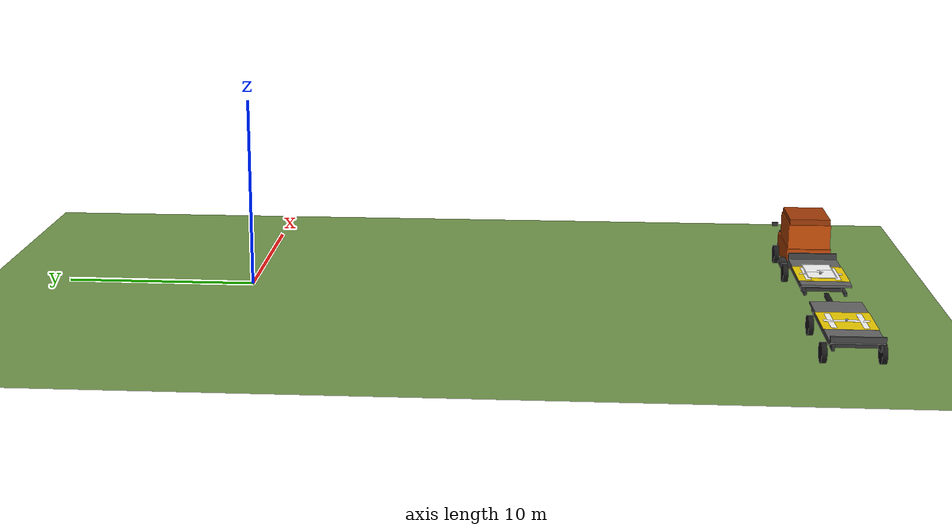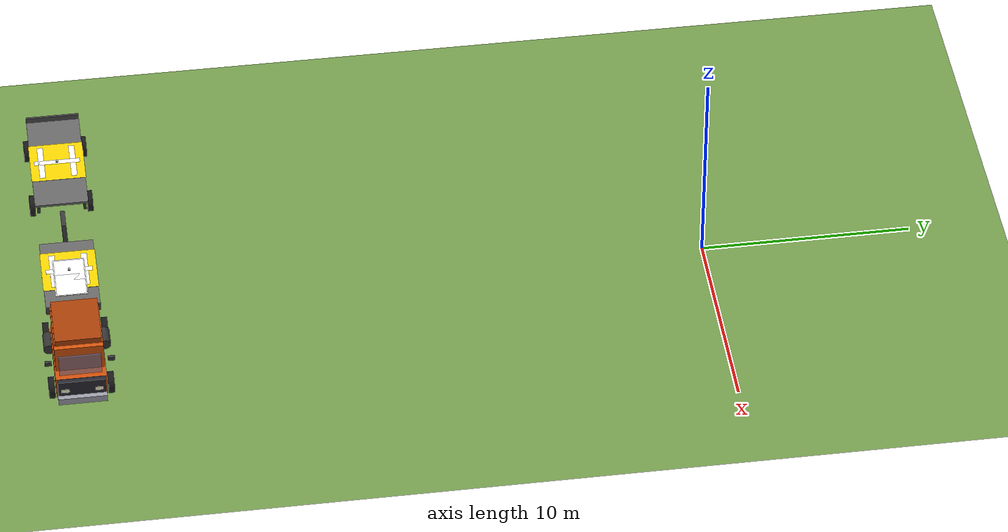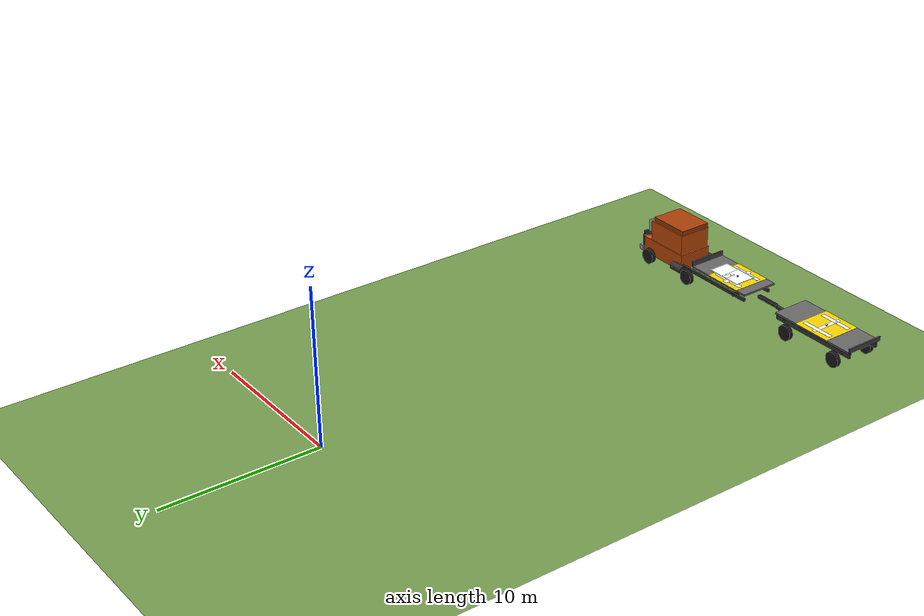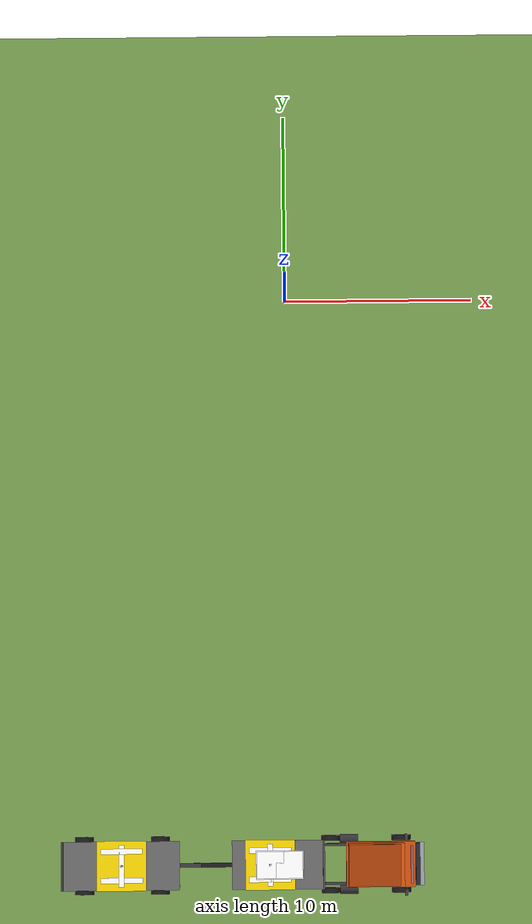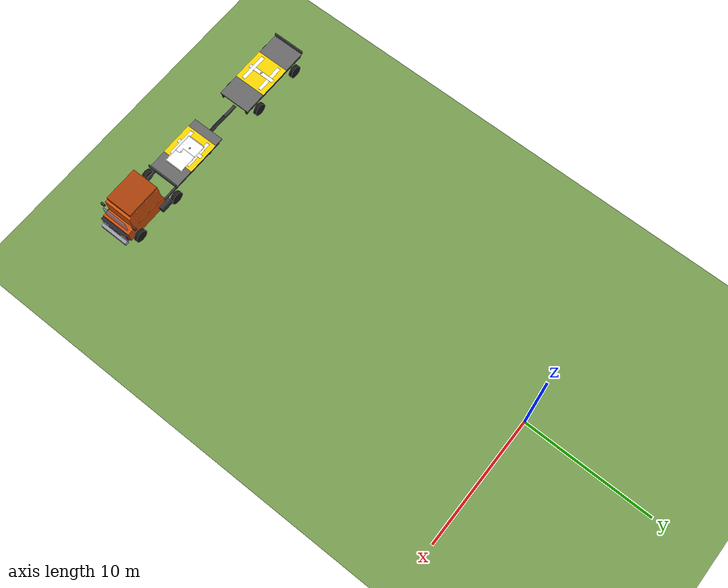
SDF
<sdf version="1.9">
 <world name="iris_apriltag_precision_land">
  <physics name="1ms" type="ignore">
   <max_step_size>0.001</max_step_size>
   <real_time_factor>1.0</real_time_factor>
  </physics>
  <plugin filename="gz-sim-physics-system" name="gz::sim::systems::Physics"/>
  <plugin filename="gz-sim-sensors-system" name="gz::sim::systems::Sensors">
   <render_engine>ogre2</render_engine>
  </plugin>
  <plugin filename="gz-sim-user-commands-system" name="gz::sim::systems::UserCommands"/>
  <plugin filename="gz-sim-scene-broadcaster-system" name="gz::sim::systems::SceneBroadcaster"/>
  <plugin filename="gz-sim-imu-system" name="gz::sim::systems::Imu"/>
  <plugin filename="gz-sim-navsat-system" name="gz::sim::systems::NavSat"/>
  <plugin filename="gz-sim-particle-emitter-system" name="gz::sim::systems::ParticleEmitter"/>
  <scene><ambient>1.0 1.0 1.0</ambient><background>0.6 0.8 1.0</background></scene>
  <light type="directional" name="sun">
   <pose>0 0 10 0 0 0</pose>
   <diffuse>0.8 0.8 0.8 1</diffuse>
   <specular>0.8 0.8 0.8 1</specular>
   <attenuation>
    <range>1000</range>
    <constant>0.9</constant>
    <linear>0.01</linear>
    <quadratic>0.001</quadratic>
   </attenuation>
   <direction>-0.5 0.1 -0.9</direction>
  </light>
  <spherical_coordinates>
   <latitude_deg>-35.363333333</latitude_deg>
   <longitude_deg>149.165222222</longitude_deg>
   <elevation>584</elevation>
   <heading_deg>0</heading_deg>
   <surface_model>EARTH_WGS84</surface_model>
  </spherical_coordinates>
  <model name="ground_plane">
   <static>true</static>
   <link name="link">
    <collision name="collision">
     <geometry><plane><normal>0 0 1</normal><size>500 500</size></plane></geometry>
    </collision>
    <visual name="visual">
     <geometry><plane><normal>0 0 1</normal><size>500 500</size></plane></geometry>
     <material>
      <ambient>0.45 0.60 0.30 1</ambient>
      <diffuse>0.45 0.60 0.30 1</diffuse>
      <specular>0.1 0.1 0.1 1</specular>
     </material>
    </visual>
   </link>
  </model>
  <model name="axes">
   <static>true</static>
   <link name="link">
    <visual name="x_axis">
     <cast_shadows>false</cast_shadows>
     <pose>2.5 0 0.05 0 0 0</pose>
     <geometry><box><size>5 0.05 0.05</size></box></geometry>
     <material><ambient>1 0 0 1</ambient><diffuse>1 0 0 1</diffuse></material>
    </visual>
    <visual name="y_axis">
     <cast_shadows>false</cast_shadows>
     <pose>0 2.5 0.05 0 0 0</pose>
     <geometry><box><size>0.05 5 0.05</size></box></geometry>
     <material><ambient>0 1 0 1</ambient><diffuse>0 1 0 1</diffuse></material>
    </visual>
    <visual name="z_axis">
     <cast_shadows>false</cast_shadows>
     <pose>0 0 2.5 0 0 0</pose>
     <geometry><box><size>0.05 0.05 5</size></box></geometry>
     <material><ambient>0 0 1 1</ambient><diffuse>0 0 1 1</diffuse></material>
    </visual>
   </link>
  </model>
  <include><uri>model://landing_truck</uri><name>landing_truck</name><pose>0 -30 0 0 0 0</pose></include>
 </world>
</sdf>

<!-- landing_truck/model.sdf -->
<sdf version="1.9">
  <model name="landing_truck">
    <static>false</static>
    <self_collide>false</self_collide>

    <link name="base_link">
      <inertial>
        <mass>5200.0</mass>
        <inertia>
          <ixx>7800.0</ixx>
          <ixy>0.0</ixy>
          <ixz>0.0</ixz>
          <iyy>43000.0</iyy>
          <iyz>0.0</iyz>
          <izz>41000.0</izz>
        </inertia>
      </inertial>
      <velocity_decay>
        <linear>0.03</linear>
        <angular>0.10</angular>
      </velocity_decay>

      <!-- Chassis rails -->
      <visual name="frame_rail_left">
        <pose>1.2 1.02 0.86 0 0 0</pose>
        <geometry><box><size>8.0 0.14 0.18</size></box></geometry>
        <material>
          <ambient>0.22 0.22 0.22 1</ambient>
          <diffuse>0.22 0.22 0.22 1</diffuse>
          <specular>0.05 0.05 0.05 1</specular>
        </material>
      </visual>
      <collision name="frame_rail_left_col">
        <pose>1.2 1.02 0.86 0 0 0</pose>
        <geometry><box><size>8.0 0.14 0.18</size></box></geometry>
      </collision>

      <visual name="frame_rail_right">
        <pose>1.2 -1.02 0.86 0 0 0</pose>
        <geometry><box><size>8.0 0.14 0.18</size></box></geometry>
        <material>
          <ambient>0.22 0.22 0.22 1</ambient>
          <diffuse>0.22 0.22 0.22 1</diffuse>
          <specular>0.05 0.05 0.05 1</specular>
        </material>
      </visual>
      <collision name="frame_rail_right_col">
        <pose>1.2 -1.02 0.86 0 0 0</pose>
        <geometry><box><size>8.0 0.14 0.18</size></box></geometry>
      </collision>

      <visual name="cross_member_rear">
        <pose>-1.8 0 0.82 0 0 0</pose>
        <geometry><box><size>0.18 2.2 0.18</size></box></geometry>
        <material>
          <ambient>0.22 0.22 0.22 1</ambient>
          <diffuse>0.22 0.22 0.22 1</diffuse>
        </material>
      </visual>
      <collision name="cross_member_rear_col">
        <pose>-1.8 0 0.82 0 0 0</pose>
        <geometry><box><size>0.18 2.2 0.18</size></box></geometry>
      </collision>

      <visual name="cross_member_front">
        <pose>3.2 0 0.82 0 0 0</pose>
        <geometry><box><size>0.18 2.2 0.18</size></box></geometry>
        <material>
          <ambient>0.22 0.22 0.22 1</ambient>
          <diffuse>0.22 0.22 0.22 1</diffuse>
        </material>
      </visual>
      <collision name="cross_member_front_col">
        <pose>3.2 0 0.82 0 0 0</pose>
        <geometry><box><size>0.18 2.2 0.18</size></box></geometry>
      </collision>

      <!-- Rear truck bed for drone 1 -->
      <visual name="truck_bed">
        <pose>-0.6 0 1.34 0 0 0</pose>
        <geometry><box><size>4.8 2.55 0.12</size></box></geometry>
        <material>
          <ambient>0.42 0.42 0.42 1</ambient>
          <diffuse>0.40 0.40 0.40 1</diffuse>
          <specular>0.08 0.08 0.08 1</specular>
        </material>
      </visual>
      <collision name="truck_bed_col">
        <pose>-0.6 0 1.34 0 0 0</pose>
        <geometry><box><size>4.8 2.55 0.12</size></box></geometry>
      </collision>

      <visual name="bed_headboard">
        <pose>1.82 0 1.56 0 0 0</pose>
        <geometry><box><size>0.10 2.55 0.32</size></box></geometry>
        <material>
          <ambient>0.30 0.30 0.30 1</ambient>
          <diffuse>0.28 0.28 0.28 1</diffuse>
        </material>
      </visual>
      <collision name="bed_headboard_col">
        <pose>1.82 0 1.56 0 0 0</pose>
        <geometry><box><size>0.10 2.55 0.32</size></box></geometry>
      </collision>

      <!-- Drone 1 landing pad -->
      <visual name="landing_pad_bg">
        <pose>-1.0 0 1.406 0 0 0</pose>
        <geometry><box><size>2.6 2.6 0.008</size></box></geometry>
        <material>
          <ambient>0.95 0.82 0.0 1</ambient>
          <diffuse>0.95 0.82 0.0 1</diffuse>
          <specular>0.15 0.12 0.0 1</specular>
        </material>
      </visual>
      <visual name="landing_pad_h_bar">
        <pose>-1.0 0 1.411 0 0 0</pose>
        <geometry><box><size>0.28 2.2 0.002</size></box></geometry>
        <material>
          <ambient>1.0 1.0 1.0 1</ambient>
          <diffuse>1.0 1.0 1.0 1</diffuse>
        </material>
      </visual>
      <visual name="landing_pad_h_left">
        <pose>-1.0 0.76 1.411 0 0 0</pose>
        <geometry><box><size>2.2 0.28 0.002</size></box></geometry>
        <material>
          <ambient>1.0 1.0 1.0 1</ambient>
          <diffuse>1.0 1.0 1.0 1</diffuse>
        </material>
      </visual>
      <visual name="landing_pad_h_right">
        <pose>-1.0 -0.76 1.411 0 0 0</pose>
        <geometry><box><size>2.2 0.28 0.002</size></box></geometry>
        <material>
          <ambient>1.0 1.0 1.0 1</ambient>
          <diffuse>1.0 1.0 1.0 1</diffuse>
        </material>
      </visual>

      <!-- Truck GPS -->
      <visual name="gps_mount_base">
        <pose>-1.0 0 1.430 0 0 0</pose>
        <geometry><box><size>0.10 0.10 0.04</size></box></geometry>
        <material>
          <ambient>0.30 0.30 0.30 1</ambient>
          <diffuse>0.28 0.28 0.28 1</diffuse>
        </material>
      </visual>
      <visual name="gps_head">
        <pose>-1.0 0 1.474 0 0 0</pose>
        <geometry><cylinder><radius>0.065</radius><length>0.048</length></cylinder></geometry>
        <material>
          <ambient>0.90 0.90 0.90 1</ambient>
          <diffuse>0.88 0.88 0.88 1</diffuse>
          <specular>0.4 0.4 0.4 1</specular>
        </material>
      </visual>
      <visual name="gps_led">
        <pose>-1.0 0 1.502 0 0 0</pose>
        <geometry><cylinder><radius>0.018</radius><length>0.008</length></cylinder></geometry>
        <material>
          <ambient>0.0 0.9 0.2 1</ambient>
          <diffuse>0.0 0.9 0.2 1</diffuse>
        </material>
      </visual>

      <!-- Cab -->
      <visual name="cab_lower">
        <pose>4.8 0 1.05 0 0 0</pose>
        <geometry><box><size>3.6 2.35 1.1</size></box></geometry>
        <material>
          <ambient>0.82 0.32 0.05 1</ambient>
          <diffuse>0.80 0.30 0.04 1</diffuse>
          <specular>0.10 0.05 0.02 1</specular>
        </material>
      </visual>
      <collision name="cab_lower_col">
        <pose>4.8 0 1.05 0 0 0</pose>
        <geometry><box><size>3.6 2.35 1.1</size></box></geometry>
      </collision>

      <visual name="cab_upper">
        <pose>4.55 0 2.25 0 0 0</pose>
        <geometry><box><size>2.9 2.25 1.35</size></box></geometry>
        <material>
          <ambient>0.85 0.35 0.05 1</ambient>
          <diffuse>0.82 0.32 0.04 1</diffuse>
          <specular>0.10 0.05 0.02 1</specular>
        </material>
      </visual>
      <collision name="cab_upper_col">
        <pose>4.55 0 2.25 0 0 0</pose>
        <geometry><box><size>2.9 2.25 1.35</size></box></geometry>
      </collision>

      <visual name="cab_roof">
        <pose>4.45 0 3.10 0 0 0</pose>
        <geometry><box><size>2.7 2.15 0.30</size></box></geometry>
        <material>
          <ambient>0.68 0.26 0.04 1</ambient>
          <diffuse>0.65 0.24 0.03 1</diffuse>
        </material>
      </visual>
      <collision name="cab_roof_col">
        <pose>4.45 0 3.10 0 0 0</pose>
        <geometry><box><size>2.7 2.15 0.30</size></box></geometry>
      </collision>

      <visual name="windshield">
        <pose>6.40 0 2.25 0 0 0</pose>
        <geometry><box><size>0.08 1.95 1.10</size></box></geometry>
        <material>
          <ambient>0.38 0.55 0.85 0.55</ambient>
          <diffuse>0.38 0.55 0.85 0.50</diffuse>
          <specular>0.5 0.6 0.9 0.3</specular>
        </material>
      </visual>

      <visual name="front_grille">
        <pose>6.75 0 1.15 0 0 0</pose>
        <geometry><box><size>0.22 2.2 0.95</size></box></geometry>
        <material>
          <ambient>0.18 0.18 0.20 1</ambient>
          <diffuse>0.15 0.15 0.18 1</diffuse>
          <specular>0.5 0.5 0.6 1</specular>
        </material>
      </visual>
      <collision name="front_grille_col">
        <pose>6.75 0 1.15 0 0 0</pose>
        <geometry><box><size>0.22 2.2 0.95</size></box></geometry>
      </collision>

      <visual name="front_bumper">
        <pose>6.95 0 0.65 0 0 0</pose>
        <geometry><box><size>0.30 2.25 0.34</size></box></geometry>
        <material>
          <ambient>0.65 0.65 0.70 1</ambient>
          <diffuse>0.60 0.60 0.65 1</diffuse>
          <specular>0.6 0.6 0.65 1</specular>
        </material>
      </visual>
      <collision name="front_bumper_col">
        <pose>6.95 0 0.65 0 0 0</pose>
        <geometry><box><size>0.30 2.25 0.34</size></box></geometry>
      </collision>

      <visual name="headlight_left">
        <pose>6.82 0.78 1.10 0 0 0</pose>
        <geometry><box><size>0.10 0.38 0.20</size></box></geometry>
        <material>
          <ambient>0.98 0.98 0.85 1</ambient>
          <diffuse>0.95 0.95 0.80 1</diffuse>
        </material>
      </visual>
      <visual name="headlight_right">
        <pose>6.82 -0.78 1.10 0 0 0</pose>
        <geometry><box><size>0.10 0.38 0.20</size></box></geometry>
        <material>
          <ambient>0.98 0.98 0.85 1</ambient>
          <diffuse>0.95 0.95 0.80 1</diffuse>
        </material>
      </visual>

      <visual name="mirror_left">
        <pose>6.10 1.45 2.20 0 0 0</pose>
        <geometry><box><size>0.14 0.32 0.20</size></box></geometry>
        <material>
          <ambient>0.25 0.25 0.25 1</ambient>
          <diffuse>0.22 0.22 0.22 1</diffuse>
        </material>
      </visual>
      <visual name="mirror_right">
        <pose>6.10 -1.45 2.20 0 0 0</pose>
        <geometry><box><size>0.14 0.32 0.20</size></box></geometry>
        <material>
          <ambient>0.25 0.25 0.25 1</ambient>
          <diffuse>0.22 0.22 0.22 1</diffuse>
        </material>
      </visual>

      <visual name="fuel_tank_left">
        <pose>3.15 1.30 0.74 0 1.5708 0</pose>
        <geometry><cylinder><radius>0.26</radius><length>0.95</length></cylinder></geometry>
        <material>
          <ambient>0.22 0.22 0.22 1</ambient>
          <diffuse>0.20 0.20 0.20 1</diffuse>
        </material>
      </visual>
      <visual name="fuel_tank_right">
        <pose>3.15 -1.30 0.74 0 1.5708 0</pose>
        <geometry><cylinder><radius>0.26</radius><length>0.95</length></cylinder></geometry>
        <material>
          <ambient>0.22 0.22 0.22 1</ambient>
          <diffuse>0.20 0.20 0.20 1</diffuse>
        </material>
      </visual>

    </link>

    <link name="base_gps_link">
      <pose>-1.0 0 1.474 0 0 0</pose>
      <sensor name="gps_sensor" type="navsat">
        <pose>0 0 0 0 0 0</pose>
        <always_on>true</always_on>
        <update_rate>20.0</update_rate>
        <navsat>
          <position_sensing>
            <horizontal>
              <noise type="gaussian"><mean>0.0</mean><stddev>0.0</stddev></noise>
            </horizontal>
            <vertical>
              <noise type="gaussian"><mean>0.0</mean><stddev>0.0</stddev></noise>
            </vertical>
          </position_sensing>
          <velocity_sensing>
            <horizontal>
              <noise type="gaussian"><mean>0.0</mean><stddev>0.05</stddev></noise>
            </horizontal>
            <vertical>
              <noise type="gaussian"><mean>0.0</mean><stddev>0.05</stddev></noise>
            </vertical>
          </velocity_sensing>
        </navsat>
      </sensor>
    </link>

    <joint name="base_gps_fixed_joint" type="fixed">
      <parent>base_link</parent>
      <child>base_gps_link</child>
    </joint>

    <include>
      <uri>model://apriltag_36h11_1</uri>
      <name>truck_apriltag_36h11_1</name>
      <pose relative_to="base_link">-1.0 0 1.418 0 0 0</pose>
    </include>

    <joint name="truck_apriltag_fixed_joint" type="fixed">
      <parent>base_link</parent>
      <child>truck_apriltag_36h11_1::tag_link</child>
    </joint>

    <link name="truck_hitch_link">
      <pose>-3.0 0 0.90 0 0 0</pose>
      <inertial>
        <mass>12.0</mass>
        <inertia>
          <ixx>0.03</ixx>
          <ixy>0.0</ixy>
          <ixz>0.0</ixz>
          <iyy>0.03</iyy>
          <iyz>0.0</iyz>
          <izz>0.03</izz>
        </inertia>
      </inertial>
      <visual name="truck_hitch_ball">
        <geometry><sphere><radius>0.10</radius></sphere></geometry>
        <material>
          <ambient>0.60 0.60 0.64 1</ambient>
          <diffuse>0.55 0.55 0.60 1</diffuse>
          <specular>0.7 0.7 0.75 1</specular>
        </material>
      </visual>
      <collision name="truck_hitch_ball_col">
        <geometry><sphere><radius>0.08</radius></sphere></geometry>
      </collision>
    </link>
    <joint name="truck_hitch_fixed_joint" type="fixed">
      <parent>base_link</parent>
      <child>truck_hitch_link</child>
    </joint>

    <!-- Steering knuckles -->
    <link name="front_left_steering_link">
      <pose>5.9 1.37 0.50 0 0 0</pose>
      <inertial>
        <mass>20.0</mass>
        <inertia>
          <ixx>0.60</ixx>
          <iyy>0.60</iyy>
          <izz>0.40</izz>
        </inertia>
      </inertial>
      <visual name="kingpin_visual">
        <pose>0 0 0 0 0 0</pose>
        <geometry><cylinder><radius>0.06</radius><length>0.18</length></cylinder></geometry>
        <material>
          <ambient>0.8 0.8 0.8 1</ambient>
          <diffuse>0.8 0.8 0.8 1</diffuse>
        </material>
      </visual>
    </link>
    <link name="front_right_steering_link">
      <pose>5.9 -1.37 0.50 0 0 0</pose>
      <inertial>
        <mass>20.0</mass>
        <inertia>
          <ixx>0.60</ixx>
          <iyy>0.60</iyy>
          <izz>0.40</izz>
        </inertia>
      </inertial>
      <visual name="kingpin_visual">
        <pose>0 0 0 0 0 0</pose>
        <geometry><cylinder><radius>0.06</radius><length>0.18</length></cylinder></geometry>
        <material>
          <ambient>0.8 0.8 0.8 1</ambient>
          <diffuse>0.8 0.8 0.8 1</diffuse>
        </material>
      </visual>
    </link>

    <!-- Truck wheels -->
    <link name="front_left_wheel">
      <pose>5.9 1.37 0.50 -1.5708 0 0</pose>
      <inertial>
        <mass>85.0</mass>
        <inertia>
          <ixx>8.0</ixx>
          <iyy>8.0</iyy>
          <izz>10.0</izz>
        </inertia>
      </inertial>
      <visual name="visual">
        <geometry><cylinder><radius>0.50</radius><length>0.28</length></cylinder></geometry>
        <material>
          <ambient>0.12 0.12 0.12 1</ambient>
          <diffuse>0.10 0.10 0.10 1</diffuse>
        </material>
      </visual>
      <collision name="collision">
        <geometry><cylinder><radius>0.50</radius><length>0.28</length></cylinder></geometry>
        <surface>
          <friction>
            <ode>
              <mu>1.5</mu>
              <mu2>2.5</mu2>
              <fdir1>0 0 1</fdir1>
            </ode>
            <bullet>
              <friction>1.5</friction>
              <friction2>2.5</friction2>
              <rolling_friction>0.05</rolling_friction>
            </bullet>
          </friction>
        </surface>
      </collision>
    </link>
    <link name="front_right_wheel">
      <pose>5.9 -1.37 0.50 -1.5708 0 0</pose>
      <inertial>
        <mass>85.0</mass>
        <inertia>
          <ixx>8.0</ixx>
          <iyy>8.0</iyy>
          <izz>10.0</izz>
        </inertia>
      </inertial>
      <visual name="visual">
        <geometry><cylinder><radius>0.50</radius><length>0.28</length></cylinder></geometry>
        <material>
          <ambient>0.12 0.12 0.12 1</ambient>
          <diffuse>0.10 0.10 0.10 1</diffuse>
        </material>
      </visual>
      <collision name="collision">
        <geometry><cylinder><radius>0.50</radius><length>0.28</length></cylinder></geometry>
        <surface>
          <friction>
            <ode>
              <mu>1.5</mu>
              <mu2>2.5</mu2>
              <fdir1>0 0 1</fdir1>
            </ode>
            <bullet>
              <friction>1.5</friction>
              <friction2>2.5</friction2>
              <rolling_friction>0.05</rolling_friction>
            </bullet>
          </friction>
        </surface>
      </collision>
    </link>
    <link name="rear_left_wheel">
      <pose>2.2 1.37 0.50 -1.5708 0 0</pose>
      <inertial>
        <mass>90.0</mass>
        <inertia>
          <ixx>8.5</ixx>
          <iyy>8.5</iyy>
          <izz>10.5</izz>
        </inertia>
      </inertial>
      <visual name="visual">
        <geometry><cylinder><radius>0.50</radius><length>0.28</length></cylinder></geometry>
        <material>
          <ambient>0.12 0.12 0.12 1</ambient>
          <diffuse>0.10 0.10 0.10 1</diffuse>
        </material>
      </visual>
      <collision name="collision">
        <geometry><cylinder><radius>0.50</radius><length>0.28</length></cylinder></geometry>
        <surface>
          <friction>
            <ode>
              <mu>1.8</mu>
              <mu2>3.0</mu2>
              <fdir1>0 0 1</fdir1>
            </ode>
            <bullet>
              <friction>1.8</friction>
              <friction2>3.0</friction2>
              <rolling_friction>0.04</rolling_friction>
            </bullet>
          </friction>
        </surface>
      </collision>
    </link>
    <link name="rear_right_wheel">
      <pose>2.2 -1.37 0.50 -1.5708 0 0</pose>
      <inertial>
        <mass>90.0</mass>
        <inertia>
          <ixx>8.5</ixx>
          <iyy>8.5</iyy>
          <izz>10.5</izz>
        </inertia>
      </inertial>
      <visual name="visual">
        <geometry><cylinder><radius>0.50</radius><length>0.28</length></cylinder></geometry>
        <material>
          <ambient>0.12 0.12 0.12 1</ambient>
          <diffuse>0.10 0.10 0.10 1</diffuse>
        </material>
      </visual>
      <collision name="collision">
        <geometry><cylinder><radius>0.50</radius><length>0.28</length></cylinder></geometry>
        <surface>
          <friction>
            <ode>
              <mu>1.8</mu>
              <mu2>3.0</mu2>
              <fdir1>0 0 1</fdir1>
            </ode>
            <bullet>
              <friction>1.8</friction>
              <friction2>3.0</friction2>
              <rolling_friction>0.04</rolling_friction>
            </bullet>
          </friction>
        </surface>
      </collision>
    </link>

    <joint name="front_left_steering_joint" type="revolute">
      <parent>base_link</parent>
      <child>front_left_steering_link</child>
      <axis>
        <xyz>0 0 1</xyz>
        <limit>
          <lower>-0.55</lower>
          <upper>0.55</upper>
          <velocity>1.0</velocity>
          <effort>1800</effort>
        </limit>
        <dynamics>
          <damping>6.0</damping>
        </dynamics>
      </axis>
    </joint>
    <joint name="front_right_steering_joint" type="revolute">
      <parent>base_link</parent>
      <child>front_right_steering_link</child>
      <axis>
        <xyz>0 0 1</xyz>
        <limit>
          <lower>-0.55</lower>
          <upper>0.55</upper>
          <velocity>1.0</velocity>
          <effort>1800</effort>
        </limit>
        <dynamics>
          <damping>6.0</damping>
        </dynamics>
      </axis>
    </joint>

    <joint name="front_left_wheel_joint" type="revolute">
      <parent>front_left_steering_link</parent>
      <child>front_left_wheel</child>
      <axis>
        <xyz>0 0 1</xyz>
        <limit>
          <lower>-1.79769e+308</lower>
          <upper>1.79769e+308</upper>
        </limit>
        <dynamics>
          <damping>0.4</damping>
        </dynamics>
      </axis>
    </joint>
    <joint name="front_right_wheel_joint" type="revolute">
      <parent>front_right_steering_link</parent>
      <child>front_right_wheel</child>
      <axis>
        <xyz>0 0 1</xyz>
        <limit>
          <lower>-1.79769e+308</lower>
          <upper>1.79769e+308</upper>
        </limit>
        <dynamics>
          <damping>0.4</damping>
        </dynamics>
      </axis>
    </joint>
    <joint name="rear_left_wheel_joint" type="revolute">
      <parent>base_link</parent>
      <child>rear_left_wheel</child>
      <axis>
        <xyz>0 0 1</xyz>
        <limit>
          <lower>-1.79769e+308</lower>
          <upper>1.79769e+308</upper>
        </limit>
        <dynamics>
          <damping>0.5</damping>
        </dynamics>
      </axis>
    </joint>
    <joint name="rear_right_wheel_joint" type="revolute">
      <parent>base_link</parent>
      <child>rear_right_wheel</child>
      <axis>
        <xyz>0 0 1</xyz>
        <limit>
          <lower>-1.79769e+308</lower>
          <upper>1.79769e+308</upper>
        </limit>
        <dynamics>
          <damping>0.5</damping>
        </dynamics>
      </axis>
    </joint>

    <!-- Trailer assembly -->
    <link name="trailer_base_link">
      <pose>-8.8 0 0 0 0 0</pose>
      <inertial>
        <mass>900.0</mass>
        <inertia>
          <ixx>140.0</ixx>
          <ixy>0.0</ixy>
          <ixz>0.0</ixz>
          <iyy>525.0</iyy>
          <iyz>0.0</iyz>
          <izz>575.0</izz>
        </inertia>
      </inertial>
      <velocity_decay>
        <linear>0.80</linear>
        <angular>4.20</angular>
      </velocity_decay>

      <visual name="frame_rail_left">
        <pose>0 1.1 1.1 0 0 0</pose>
        <geometry><box><size>6.1 0.14 0.35</size></box></geometry>
        <material>
          <ambient>0.22 0.22 0.22 1</ambient>
          <diffuse>0.22 0.22 0.22 1</diffuse>
          <specular>0.05 0.05 0.05 1</specular>
        </material>
      </visual>
      <collision name="frame_rail_left_col">
        <pose>0 1.1 1.1 0 0 0</pose>
        <geometry><box><size>6.1 0.14 0.35</size></box></geometry>
      </collision>

      <visual name="frame_rail_right">
        <pose>0 -1.1 1.1 0 0 0</pose>
        <geometry><box><size>6.1 0.14 0.35</size></box></geometry>
        <material>
          <ambient>0.22 0.22 0.22 1</ambient>
          <diffuse>0.22 0.22 0.22 1</diffuse>
          <specular>0.05 0.05 0.05 1</specular>
        </material>
      </visual>
      <collision name="frame_rail_right_col">
        <pose>0 -1.1 1.1 0 0 0</pose>
        <geometry><box><size>6.1 0.14 0.35</size></box></geometry>
      </collision>

      <visual name="cross_beam_rear">
        <pose>-2.4 0 1.05 0 0 0</pose>
        <geometry><box><size>0.14 2.35 0.28</size></box></geometry>
        <material>
          <ambient>0.22 0.22 0.22 1</ambient>
          <diffuse>0.22 0.22 0.22 1</diffuse>
        </material>
      </visual>
      <collision name="cross_beam_rear_col">
        <pose>-2.4 0 1.05 0 0 0</pose>
        <geometry><box><size>0.14 2.35 0.28</size></box></geometry>
      </collision>

      <visual name="cross_beam_front">
        <pose>2.4 0 1.05 0 0 0</pose>
        <geometry><box><size>0.14 2.35 0.28</size></box></geometry>
        <material>
          <ambient>0.22 0.22 0.22 1</ambient>
          <diffuse>0.22 0.22 0.22 1</diffuse>
        </material>
      </visual>
      <collision name="cross_beam_front_col">
        <pose>2.4 0 1.05 0 0 0</pose>
        <geometry><box><size>0.14 2.35 0.28</size></box></geometry>
      </collision>

      <visual name="trailer_bed">
        <pose>0 0 1.34 0 0 0</pose>
        <geometry><box><size>6.1 2.55 0.12</size></box></geometry>
        <material>
          <ambient>0.42 0.42 0.42 1</ambient>
          <diffuse>0.40 0.40 0.40 1</diffuse>
          <specular>0.08 0.08 0.08 1</specular>
        </material>
      </visual>
      <collision name="trailer_bed_col">
        <pose>0 0 1.34 0 0 0</pose>
        <geometry><box><size>6.1 2.55 0.12</size></box></geometry>
      </collision>

      <visual name="trailer_rear_board">
        <pose>-3.11 0 1.52 0 0 0</pose>
        <geometry><box><size>0.10 2.55 0.28</size></box></geometry>
        <material>
          <ambient>0.30 0.30 0.30 1</ambient>
          <diffuse>0.28 0.28 0.28 1</diffuse>
        </material>
      </visual>
      <collision name="trailer_rear_board_col">
        <pose>-3.11 0 1.52 0 0 0</pose>
        <geometry><box><size>0.10 2.55 0.28</size></box></geometry>
      </collision>

      <visual name="tongue_main">
        <pose>3.6 0 0.85 0 0 0</pose>
        <geometry><box><size>1.10 0.22 0.16</size></box></geometry>
        <material>
          <ambient>0.25 0.25 0.25 1</ambient>
          <diffuse>0.22 0.22 0.22 1</diffuse>
        </material>
      </visual>
      <collision name="tongue_main_col">
        <pose>3.6 0 0.85 0 0 0</pose>
        <geometry><box><size>1.10 0.22 0.16</size></box></geometry>
      </collision>

      <visual name="landing_pad_bg">
        <pose>0 0 1.406 0 0 0</pose>
        <geometry><box><size>2.6 2.6 0.008</size></box></geometry>
        <material>
          <ambient>0.95 0.82 0.0 1</ambient>
          <diffuse>0.95 0.82 0.0 1</diffuse>
          <specular>0.15 0.12 0.0 1</specular>
        </material>
      </visual>
      <visual name="landing_pad_h_bar">
        <pose>0 0 1.411 0 0 0</pose>
        <geometry><box><size>0.28 2.2 0.002</size></box></geometry>
        <material>
          <ambient>1.0 1.0 1.0 1</ambient>
          <diffuse>1.0 1.0 1.0 1</diffuse>
        </material>
      </visual>
      <visual name="landing_pad_h_left">
        <pose>0 0.76 1.411 0 0 0</pose>
        <geometry><box><size>2.2 0.28 0.002</size></box></geometry>
        <material>
          <ambient>1.0 1.0 1.0 1</ambient>
          <diffuse>1.0 1.0 1.0 1</diffuse>
        </material>
      </visual>
      <visual name="landing_pad_h_right">
        <pose>0 -0.76 1.411 0 0 0</pose>
        <geometry><box><size>2.2 0.28 0.002</size></box></geometry>
        <material>
          <ambient>1.0 1.0 1.0 1</ambient>
          <diffuse>1.0 1.0 1.0 1</diffuse>
        </material>
      </visual>

      <visual name="gps_mount_base">
        <pose>0 0 1.430 0 0 0</pose>
        <geometry><box><size>0.10 0.10 0.04</size></box></geometry>
        <material>
          <ambient>0.30 0.30 0.30 1</ambient>
          <diffuse>0.28 0.28 0.28 1</diffuse>
        </material>
      </visual>
      <visual name="gps_head">
        <pose>0 0 1.474 0 0 0</pose>
        <geometry><cylinder><radius>0.065</radius><length>0.048</length></cylinder></geometry>
        <material>
          <ambient>0.90 0.90 0.90 1</ambient>
          <diffuse>0.88 0.88 0.88 1</diffuse>
          <specular>0.4 0.4 0.4 1</specular>
        </material>
      </visual>
      <visual name="gps_led">
        <pose>0 0 1.502 0 0 0</pose>
        <geometry><cylinder><radius>0.018</radius><length>0.008</length></cylinder></geometry>
        <material>
          <ambient>0.0 0.9 0.2 1</ambient>
          <diffuse>0.0 0.9 0.2 1</diffuse>
        </material>
      </visual>

      <sensor name="trailer_gps_sensor" type="navsat">
        <pose>0 0 1.474 0 0 0</pose>
        <always_on>true</always_on>
        <update_rate>20.0</update_rate>
        <navsat>
          <position_sensing>
            <horizontal>
              <noise type="gaussian"><mean>0.0</mean><stddev>0.0</stddev></noise>
            </horizontal>
            <vertical>
              <noise type="gaussian"><mean>0.0</mean><stddev>0.0</stddev></noise>
            </vertical>
          </position_sensing>
          <velocity_sensing>
            <horizontal>
              <noise type="gaussian"><mean>0.0</mean><stddev>0.05</stddev></noise>
            </horizontal>
            <vertical>
              <noise type="gaussian"><mean>0.0</mean><stddev>0.05</stddev></noise>
            </vertical>
          </velocity_sensing>
        </navsat>
      </sensor>
    </link>

    <include>
      <uri>model://apriltag_36h11_2</uri>
      <name>trailer_apriltag_36h11_2</name>
      <pose relative_to="trailer_base_link">0 0 1.418 0 0 0</pose>
    </include>

    <joint name="trailer_apriltag_fixed_joint" type="fixed">
      <parent>trailer_base_link</parent>
      <child>trailer_apriltag_36h11_2::tag_link</child>
    </joint>

    <link name="trailer_coupler_link">
      <pose>-4.62 0 0.82 0 0 0</pose>
      <inertial>
        <mass>10.0</mass>
        <inertia>
          <ixx>0.03</ixx>
          <ixy>0.0</ixy>
          <ixz>0.0</ixz>
          <iyy>0.03</iyy>
          <iyz>0.0</iyz>
          <izz>0.03</izz>
        </inertia>
      </inertial>
      <visual name="coupler">
        <geometry><sphere><radius>0.09</radius></sphere></geometry>
        <material>
          <ambient>0.55 0.55 0.60 1</ambient>
          <diffuse>0.50 0.50 0.55 1</diffuse>
          <specular>0.6 0.6 0.65 1</specular>
        </material>
      </visual>
      <collision name="coupler_col">
        <geometry><sphere><radius>0.07</radius></sphere></geometry>
      </collision>
    </link>
    <joint name="trailer_coupler_fixed_joint" type="fixed">
      <parent>trailer_coupler_link</parent>
      <child>trailer_base_link</child>
    </joint>

    <!-- Rigid drawbar hitch -->
    <link name="tow_bar_link">
      <pose>-3.0 0 0.90 0 0 0</pose>
      <inertial>
        <mass>120.0</mass>
        <inertia>
          <ixx>0.25</ixx>
          <ixy>0.0</ixy>
          <ixz>0.0</ixz>
          <iyy>24.0</iyy>
          <iyz>0.0</iyz>
          <izz>24.0</izz>
        </inertia>
      </inertial>
      <visual name="tow_bar_visual">
        <pose>-0.81 0 0 0 0 0</pose>
        <geometry><box><size>1.62 0.22 0.18</size></box></geometry>
        <material>
          <ambient>0.12 0.12 0.12 1</ambient>
          <diffuse>0.10 0.10 0.10 1</diffuse>
          <specular>0.15 0.15 0.15 1</specular>
        </material>
      </visual>
      <collision name="tow_bar_col">
        <pose>-0.81 0 0 0 0 0</pose>
        <geometry><box><size>1.62 0.22 0.18</size></box></geometry>
      </collision>
    </link>
    <joint name="truck_to_tow_bar_joint" type="revolute">
      <parent>truck_hitch_link</parent>
      <child>tow_bar_link</child>
      <axis>
        <xyz>0 0 1</xyz>
        <limit>
          <lower>-1.5</lower>
          <upper>1.5</upper>
          <effort>1500</effort>
          <velocity>2.0</velocity>
        </limit>
        <dynamics>
          <damping>42.0</damping>
          <spring_reference>0.0</spring_reference>
          <spring_stiffness>45.0</spring_stiffness>
        </dynamics>
      </axis>
    </joint>

    <link name="tow_bar_rear_tip">
      <pose>-4.62 0 0.90 0 0 0</pose>
      <inertial>
        <mass>10.0</mass>
        <inertia>
          <ixx>0.02</ixx>
          <ixy>0.0</ixy>
          <ixz>0.0</ixz>
          <iyy>0.02</iyy>
          <iyz>0.0</iyz>
          <izz>0.02</izz>
        </inertia>
      </inertial>
    </link>
    <joint name="tow_bar_rear_tip_fixed_joint" type="fixed">
      <parent>tow_bar_link</parent>
      <child>tow_bar_rear_tip</child>
    </joint>
    <joint name="tow_bar_to_trailer_joint" type="revolute">
      <parent>tow_bar_rear_tip</parent>
      <child>trailer_coupler_link</child>
      <axis>
        <xyz>0 0 1</xyz>
        <limit>
          <lower>-1.8</lower>
          <upper>1.8</upper>
          <effort>1500</effort>
          <velocity>2.0</velocity>
        </limit>
        <dynamics>
          <damping>46.0</damping>
          <spring_reference>0.0</spring_reference>
          <spring_stiffness>55.0</spring_stiffness>
        </dynamics>
      </axis>
    </joint>

    <!-- Trailer wheels -->
    <link name="trailer_rear_left_wheel">
      <pose>-10.8 1.38 0.50 -1.5708 0 0</pose>
      <inertial>
        <mass>30.0</mass>
        <inertia>
          <ixx>0.45</ixx>
          <iyy>0.45</iyy>
          <izz>0.58</izz>
        </inertia>
      </inertial>
      <visual name="visual">
        <geometry><cylinder><radius>0.50</radius><length>0.26</length></cylinder></geometry>
        <material>
          <ambient>0.12 0.12 0.12 1</ambient>
          <diffuse>0.10 0.10 0.10 1</diffuse>
        </material>
      </visual>
      <collision name="collision">
        <geometry><cylinder><radius>0.50</radius><length>0.26</length></cylinder></geometry>
        <surface>
          <friction>
            <ode>
              <mu>8.0</mu>
              <mu2>8.0</mu2>
              <fdir1>0 0 1</fdir1>
              <slip1>0.0002</slip1>
              <slip2>0.0005</slip2>
            </ode>
            <bullet>
                <friction>8.0</friction>
                <friction2>8.0</friction2>
                <rolling_friction>3.80</rolling_friction>
            </bullet>
          </friction>
        </surface>
      </collision>
    </link>
    <link name="trailer_rear_right_wheel">
      <pose>-10.8 -1.38 0.50 -1.5708 0 0</pose>
      <inertial>
        <mass>30.0</mass>
        <inertia>
          <ixx>0.45</ixx>
          <iyy>0.45</iyy>
          <izz>0.58</izz>
        </inertia>
      </inertial>
      <visual name="visual">
        <geometry><cylinder><radius>0.50</radius><length>0.26</length></cylinder></geometry>
        <material>
          <ambient>0.12 0.12 0.12 1</ambient>
          <diffuse>0.10 0.10 0.10 1</diffuse>
        </material>
      </visual>
      <collision name="collision">
        <geometry><cylinder><radius>0.50</radius><length>0.26</length></cylinder></geometry>
        <surface>
          <friction>
            <ode>
              <mu>8.0</mu>
              <mu2>8.0</mu2>
              <fdir1>0 0 1</fdir1>
              <slip1>0.0002</slip1>
              <slip2>0.0005</slip2>
            </ode>
            <bullet>
                <friction>8.0</friction>
                <friction2>8.0</friction2>
                <rolling_friction>3.80</rolling_friction>
            </bullet>
          </friction>
        </surface>
      </collision>
    </link>
    <link name="trailer_front_left_wheel">
      <pose>-6.8 1.38 0.50 -1.5708 0 0</pose>
      <inertial>
        <mass>30.0</mass>
        <inertia>
          <ixx>0.45</ixx>
          <iyy>0.45</iyy>
          <izz>0.58</izz>
        </inertia>
      </inertial>
      <visual name="visual">
        <geometry><cylinder><radius>0.50</radius><length>0.26</length></cylinder></geometry>
        <material>
          <ambient>0.12 0.12 0.12 1</ambient>
          <diffuse>0.10 0.10 0.10 1</diffuse>
        </material>
      </visual>
      <collision name="collision">
        <geometry><cylinder><radius>0.50</radius><length>0.26</length></cylinder></geometry>
        <surface>
          <friction>
            <ode>
              <mu>2.2</mu>
              <mu2>3.0</mu2>
              <fdir1>0 0 1</fdir1>
              <slip1>0.03</slip1>
              <slip2>0.08</slip2>
            </ode>
            <bullet>
                <friction>2.2</friction>
                <friction2>3.0</friction2>
                <rolling_friction>0.90</rolling_friction>
            </bullet>
          </friction>
        </surface>
      </collision>
    </link>
    <link name="trailer_front_right_wheel">
      <pose>-6.8 -1.38 0.50 -1.5708 0 0</pose>
      <inertial>
        <mass>30.0</mass>
        <inertia>
          <ixx>0.45</ixx>
          <iyy>0.45</iyy>
          <izz>0.58</izz>
        </inertia>
      </inertial>
      <visual name="visual">
        <geometry><cylinder><radius>0.50</radius><length>0.26</length></cylinder></geometry>
        <material>
          <ambient>0.12 0.12 0.12 1</ambient>
          <diffuse>0.10 0.10 0.10 1</diffuse>
        </material>
      </visual>
      <collision name="collision">
        <geometry><cylinder><radius>0.50</radius><length>0.26</length></cylinder></geometry>
        <surface>
          <friction>
            <ode>
              <mu>2.2</mu>
              <mu2>3.0</mu2>
              <fdir1>0 0 1</fdir1>
              <slip1>0.03</slip1>
              <slip2>0.08</slip2>
            </ode>
            <bullet>
                <friction>2.2</friction>
                <friction2>3.0</friction2>
                <rolling_friction>0.90</rolling_friction>
            </bullet>
          </friction>
        </surface>
      </collision>
    </link>

    <joint name="trailer_rear_left_wheel_joint" type="revolute">
      <parent>trailer_base_link</parent>
      <child>trailer_rear_left_wheel</child>
      <axis>
        <xyz>0 0 1</xyz>
        <limit>
          <lower>-1.79769e+308</lower>
          <upper>1.79769e+308</upper>
        </limit>
        <dynamics>
          <damping>58.0</damping>
          <friction>52.0</friction>
        </dynamics>
      </axis>
    </joint>
    <joint name="trailer_rear_right_wheel_joint" type="revolute">
      <parent>trailer_base_link</parent>
      <child>trailer_rear_right_wheel</child>
      <axis>
        <xyz>0 0 1</xyz>
        <limit>
          <lower>-1.79769e+308</lower>
          <upper>1.79769e+308</upper>
        </limit>
        <dynamics>
          <damping>58.0</damping>
          <friction>52.0</friction>
        </dynamics>
      </axis>
    </joint>
    <joint name="trailer_front_left_wheel_joint" type="revolute">
      <parent>trailer_base_link</parent>
      <child>trailer_front_left_wheel</child>
      <axis>
        <xyz>0 0 1</xyz>
        <limit>
          <lower>-1.79769e+308</lower>
          <upper>1.79769e+308</upper>
        </limit>
        <dynamics>
          <damping>16.0</damping>
          <friction>12.0</friction>
        </dynamics>
      </axis>
    </joint>
    <joint name="trailer_front_right_wheel_joint" type="revolute">
      <parent>trailer_base_link</parent>
      <child>trailer_front_right_wheel</child>
      <axis>
        <xyz>0 0 1</xyz>
        <limit>
          <lower>-1.79769e+308</lower>
          <upper>1.79769e+308</upper>
        </limit>
        <dynamics>
          <damping>16.0</damping>
          <friction>12.0</friction>
        </dynamics>
      </axis>
    </joint>

    <!-- Keep enough lateral compliance for turning while adding longitudinal
         resistance so the trailer settles promptly after a full stop. -->
    <plugin
      filename="gz-sim-wheel-slip-system"
      name="gz::sim::systems::WheelSlip">
      <wheel link_name="trailer_rear_left_wheel">
        <wheel_radius>0.50</wheel_radius>
        <slip_compliance_lateral>0.006</slip_compliance_lateral>
        <slip_compliance_longitudinal>0.0001</slip_compliance_longitudinal>
        <wheel_normal_force>7000</wheel_normal_force>
      </wheel>
      <wheel link_name="trailer_rear_right_wheel">
        <wheel_radius>0.50</wheel_radius>
        <slip_compliance_lateral>0.006</slip_compliance_lateral>
        <slip_compliance_longitudinal>0.0001</slip_compliance_longitudinal>
        <wheel_normal_force>7000</wheel_normal_force>
      </wheel>
      <wheel link_name="trailer_front_left_wheel">
        <wheel_radius>0.50</wheel_radius>
        <slip_compliance_lateral>0.18</slip_compliance_lateral>
        <slip_compliance_longitudinal>0.012</slip_compliance_longitudinal>
        <wheel_normal_force>2400</wheel_normal_force>
      </wheel>
      <wheel link_name="trailer_front_right_wheel">
        <wheel_radius>0.50</wheel_radius>
        <slip_compliance_lateral>0.18</slip_compliance_lateral>
        <slip_compliance_longitudinal>0.012</slip_compliance_longitudinal>
        <wheel_normal_force>2400</wheel_normal_force>
      </wheel>
    </plugin>

    <plugin
      filename="gz-sim-ackermann-steering-system"
      name="gz::sim::systems::AckermannSteering">
      <left_joint>front_left_wheel_joint</left_joint>
      <left_joint>rear_left_wheel_joint</left_joint>
      <right_joint>front_right_wheel_joint</right_joint>
      <right_joint>rear_right_wheel_joint</right_joint>
      <left_steering_joint>front_left_steering_joint</left_steering_joint>
      <right_steering_joint>front_right_steering_joint</right_steering_joint>
      <kingpin_width>2.74</kingpin_width>
      <steering_limit>0.50</steering_limit>
      <wheel_base>3.70</wheel_base>
      <wheel_separation>2.74</wheel_separation>
      <wheel_radius>0.50</wheel_radius>
      <min_velocity>-2.0</min_velocity>
      <max_velocity>6.0</max_velocity>
      <min_acceleration>-3.5</min_acceleration>
      <max_acceleration>2.5</max_acceleration>
    </plugin>

    <!-- Keyboard teleop via Gazebo KeyPublisher (W/A/S/D + X/Space stop) -->
    <plugin filename="gz-sim-triggered-publisher-system"
            name="gz::sim::systems::TriggeredPublisher">
      <input type="gz.msgs.Int32" topic="/keyboard/keypress">
        <match field="data">87</match>
      </input>
      <output type="gz.msgs.Twist" topic="/model/landing_truck/cmd_vel">
        linear: {x: 2.6}, angular: {z: 0.0}
      </output>
    </plugin>
    <plugin filename="gz-sim-triggered-publisher-system"
            name="gz::sim::systems::TriggeredPublisher">
      <input type="gz.msgs.Int32" topic="/keyboard/keypress">
        <match field="data">65</match>
      </input>
      <output type="gz.msgs.Twist" topic="/model/landing_truck/cmd_vel">
        linear: {x: 1.8}, angular: {z: 0.30}
      </output>
    </plugin>
    <plugin filename="gz-sim-triggered-publisher-system"
            name="gz::sim::systems::TriggeredPublisher">
      <input type="gz.msgs.Int32" topic="/keyboard/keypress">
        <match field="data">83</match>
      </input>
      <output type="gz.msgs.Twist" topic="/model/landing_truck/cmd_vel">
        linear: {x: -1.4}, angular: {z: 0.0}
      </output>
    </plugin>
    <plugin filename="gz-sim-triggered-publisher-system"
            name="gz::sim::systems::TriggeredPublisher">
      <input type="gz.msgs.Int32" topic="/keyboard/keypress">
        <match field="data">68</match>
      </input>
      <output type="gz.msgs.Twist" topic="/model/landing_truck/cmd_vel">
        linear: {x: 1.8}, angular: {z: -0.30}
      </output>
    </plugin>
    <plugin filename="gz-sim-triggered-publisher-system"
            name="gz::sim::systems::TriggeredPublisher">
      <input type="gz.msgs.Int32" topic="/keyboard/keypress">
        <match field="data">88</match>
      </input>
      <output type="gz.msgs.Twist" topic="/model/landing_truck/cmd_vel">
        linear: {x: 0.0}, angular: {z: 0.0}
      </output>
    </plugin>
    <plugin filename="gz-sim-triggered-publisher-system"
            name="gz::sim::systems::TriggeredPublisher">
      <input type="gz.msgs.Int32" topic="/keyboard/keypress">
        <match field="data">32</match>
      </input>
      <output type="gz.msgs.Twist" topic="/model/landing_truck/cmd_vel">
        linear: {x: 0.0}, angular: {z: 0.0}
      </output>
    </plugin>
  </model>
</sdf>

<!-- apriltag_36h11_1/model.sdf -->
<sdf version="1.9">
  <model name="apriltag_36h11_1">
    <static>false</static>
    <link name="tag_link">
      <inertial>
        <mass>0.02</mass>
        <inertia>
          <ixx>1e-4</ixx>
          <ixy>0</ixy>
          <ixz>0</ixz>
          <iyy>1e-4</iyy>
          <iyz>0</iyz>
          <izz>1e-4</izz>
        </inertia>
      </inertial>

      <visual name="tag_backing">
        <pose>0 0 -0.004 0 0 0</pose>
        <geometry>
          <box>
            <size>1.50 1.50 0.008</size>
          </box>
        </geometry>
        <material>
          <ambient>1 1 1 1</ambient>
          <diffuse>1 1 1 1</diffuse>
          <specular>0.05 0.05 0.05 1</specular>
        </material>
      </visual>

      <visual name="tag36h11_1">
        <pose>0 0 0.001 0 0 0</pose>
        <geometry>
          <plane>
            <normal>0 0 1</normal>
            <size>1.40 1.40</size>
          </plane>
        </geometry>
        <material>
          <ambient>1 1 1 1</ambient>
          <diffuse>1 1 1 1</diffuse>
          <specular>0 0 0 1</specular>
          <pbr>
            <metal>
              <albedo_map>model://apriltag_36h11_1/materials/textures/tag36h11_1.png</albedo_map>
              <roughness>1.0</roughness>
              <metalness>0.0</metalness>
            </metal>
          </pbr>
        </material>
      </visual>

    </link>
  </model>
</sdf>

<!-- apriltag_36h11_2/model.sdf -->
<sdf version="1.9">
  <model name="apriltag_36h11_2">
    <static>false</static>
    <link name="tag_link">
      <inertial>
        <mass>0.02</mass>
        <inertia>
          <ixx>1e-4</ixx>
          <ixy>0</ixy>
          <ixz>0</ixz>
          <iyy>1e-4</iyy>
          <iyz>0</iyz>
          <izz>1e-4</izz>
        </inertia>
      </inertial>

      <visual name="tag_backing">
        <pose>0 0 -0.004 0 0 0</pose>
        <geometry>
          <box>
            <size>1.50 1.50 0.008</size>
          </box>
        </geometry>
        <material>
          <ambient>1 1 1 1</ambient>
          <diffuse>1 1 1 1</diffuse>
          <specular>0.05 0.05 0.05 1</specular>
        </material>
      </visual>

      <visual name="tag36h11_2">
        <pose>0 0 0.001 0 0 0</pose>
        <geometry>
          <plane>
            <normal>0 0 1</normal>
            <size>1.40 1.40</size>
          </plane>
        </geometry>
        <material>
          <ambient>1 1 1 1</ambient>
          <diffuse>1 1 1 1</diffuse>
          <specular>0 0 0 1</specular>
          <pbr>
            <metal>
              <albedo_map>model://apriltag_36h11_2/materials/textures/tag36h11_2.png</albedo_map>
              <roughness>1.0</roughness>
              <metalness>0.0</metalness>
            </metal>
          </pbr>
        </material>
      </visual>

    </link>
  </model>
</sdf>
